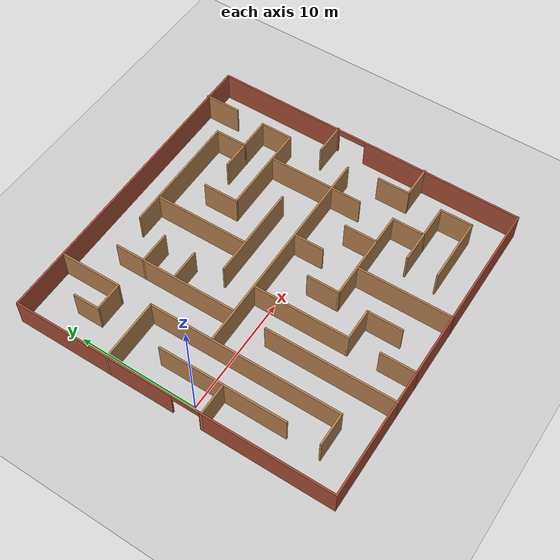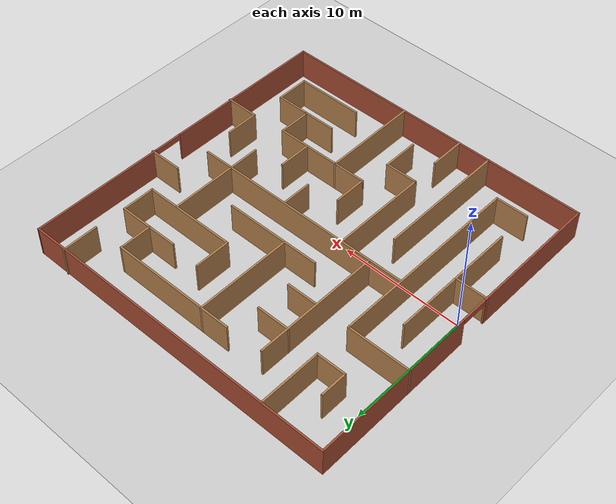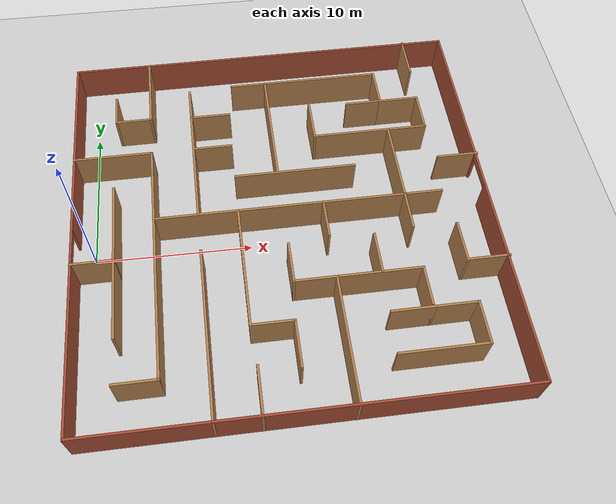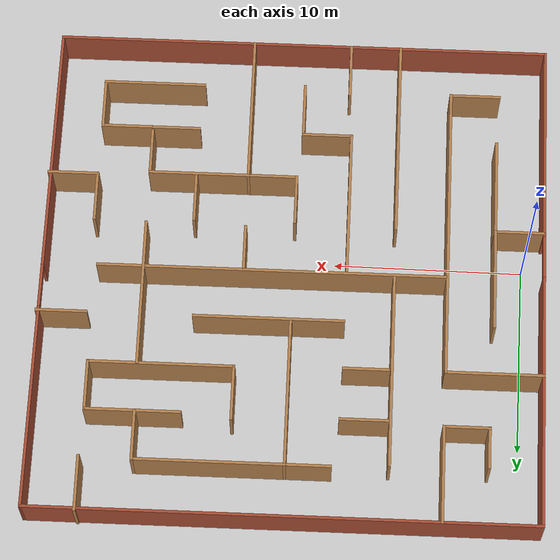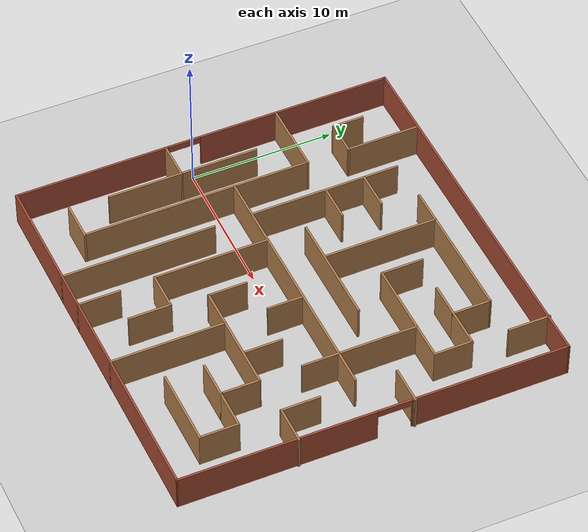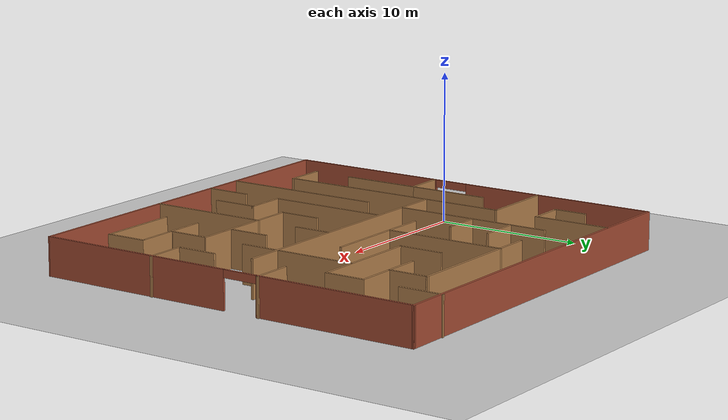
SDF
<sdf version="1.7">
 <world name="default">
  <light name="sun" type="directional">
   <pose>0 0 10 0 -0 0</pose>
   <diffuse>0.8 0.8 0.8 1</diffuse>
   <specular>0.2 0.2 0.2 1</specular>
   <attenuation>
    <range>1000</range>
    <constant>0.9</constant>
    <linear>0.01</linear>
    <quadratic>0.001</quadratic>
   </attenuation>
   <direction>-0.5 0.1 -0.9</direction>
   <spot><inner_angle>0</inner_angle><outer_angle>0</outer_angle><falloff>0</falloff></spot>
  </light>
  <model name="ground_plane">
   <static>1</static>
   <link name="link">
    <collision name="collision">
     <geometry><plane><normal>0 0 1</normal><size>100 100</size></plane></geometry>
     <surface>
      <contact><collide_bitmask>65535</collide_bitmask></contact>
      <friction><ode><mu>100</mu><mu2>50</mu2></ode></friction>
     </surface>
    </collision>
    <visual name="visual">
     <cast_shadows>0</cast_shadows>
     <geometry><plane><normal>0 0 1</normal><size>100 100</size></plane></geometry>
     <material>
      <script><uri>file://media/materials/scripts/gazebo.material</uri><name>Gazebo/Grey</name></script>
     </material>
    </visual>
   </link>
  </model>
  <gravity>0 0 -9.8</gravity>
  <magnetic_field>6e-06 2.3e-05 -4.2e-05</magnetic_field>
  <atmosphere type="adiabatic"/>
  <physics type="ode">
   <max_step_size>0.001</max_step_size>
   <real_time_factor>1</real_time_factor>
   <real_time_update_rate>1000</real_time_update_rate>
  </physics>
  <scene><ambient>0.4 0.4 0.4 1</ambient><background>0.7 0.7 0.7 1</background><shadows>1</shadows></scene>
  <audio><device>default</device></audio>
  <spherical_coordinates>
   <surface_model>EARTH_WGS84</surface_model>
   <latitude_deg>0</latitude_deg>
   <longitude_deg>0</longitude_deg>
   <elevation>0</elevation>
   <heading_deg>0</heading_deg>
  </spherical_coordinates>
  <model name="maze2">
   <pose>12.2143 1.45037 0 0 -0 -1.56188</pose>
   <link name="Wall_0">
    <collision name="Wall_0_Collision">
     <geometry><box><size>26.75 0.15 2.5</size></box></geometry>
     <pose>0 0 1.25 0 -0 0</pose>
    </collision>
    <visual name="Wall_0_Visual">
     <pose>0 0 1.25 0 -0 0</pose>
     <geometry><box><size>26.75 0.15 2.5</size></box></geometry>
     <material>
      <script><uri>file://media/materials/scripts/gazebo.material</uri><name>Gazebo/Bricks</name></script>
      <ambient>1 1 1 1</ambient>
     </material>
     <meta><layer>0</layer></meta>
    </visual>
    <pose>-13.2634 0.003745 0 0 -0 -1.5708</pose>
   </link>
   <link name="Wall_1">
    <pose>0.03659 -13.2963 0 0 -0 0</pose>
    <visual name="Wall_1_Visual_0">
     <pose>-6.5593 0 1.25 0 -0 0</pose>
     <geometry><box><size>13.6314 0.15 2.5</size></box></geometry>
     <material>
      <script><uri>file://media/materials/scripts/gazebo.material</uri><name>Gazebo/Bricks</name></script>
      <ambient>1 1 1 1</ambient>
     </material>
     <meta><layer>0</layer></meta>
    </visual>
    <collision name="Wall_1_Collision_0">
     <geometry><box><size>13.6314 0.15 2.5</size></box></geometry>
     <pose>-6.5593 0 1.25 0 -0 0</pose>
    </collision>
    <visual name="Wall_1_Visual_1">
     <pose>7.96356 0 1.25 0 -0 0</pose>
     <geometry><box><size>10.8229 0.15 2.5</size></box></geometry>
     <material>
      <script><uri>file://media/materials/scripts/gazebo.material</uri><name>Gazebo/Bricks</name></script>
      <ambient>1 1 1 1</ambient>
     </material>
     <meta><layer>0</layer></meta>
    </visual>
    <collision name="Wall_1_Collision_1">
     <geometry><box><size>10.8229 0.15 2.5</size></box></geometry>
     <pose>7.96356 0 1.25 0 -0 0</pose>
    </collision>
    <visual name="Wall_1_Visual_2">
     <pose>1.40426 0 2.25 0 -0 0</pose>
     <geometry><box><size>2.29572 0.15 0.5</size></box></geometry>
     <material>
      <script><uri>file://media/materials/scripts/gazebo.material</uri><name>Gazebo/Bricks</name></script>
      <ambient>1 1 1 1</ambient>
     </material>
     <meta><layer>0</layer></meta>
    </visual>
    <collision name="Wall_1_Collision_2">
     <geometry><box><size>2.29572 0.15 0.5</size></box></geometry>
     <pose>1.40426 0 2.25 0 -0 0</pose>
    </collision>
   </link>
   <link name="Wall_10">
    <collision name="Wall_10_Collision">
     <geometry><box><size>5.25 0.15 2.5</size></box></geometry>
     <pose>0 0 1.25 0 -0 0</pose>
    </collision>
    <visual name="Wall_10_Visual">
     <pose>0 0 1.25 0 -0 0</pose>
     <geometry><box><size>5.25 0.15 2.5</size></box></geometry>
     <material>
      <script><uri>file://media/materials/scripts/gazebo.material</uri><name>Gazebo/Wood</name></script>
      <ambient>1 1 1 1</ambient>
     </material>
     <meta><layer>0</layer></meta>
    </visual>
    <pose>5.3166 -10.7044 0 0 -0 0</pose>
   </link>
   <link name="Wall_12">
    <collision name="Wall_12_Collision">
     <geometry><box><size>5.5 0.15 2.5</size></box></geometry>
     <pose>0 0 1.25 0 -0 0</pose>
    </collision>
    <visual name="Wall_12_Visual">
     <pose>0 0 1.25 0 -0 0</pose>
     <geometry><box><size>5.5 0.15 2.5</size></box></geometry>
     <material>
      <script><uri>file://media/materials/scripts/gazebo.material</uri><name>Gazebo/Wood</name></script>
      <ambient>1 1 1 1</ambient>
     </material>
     <meta><layer>0</layer></meta>
    </visual>
    <pose>0.091601 -10.7044 0 0 -0 3.14159</pose>
   </link>
   <link name="Wall_14">
    <collision name="Wall_14_Collision">
     <geometry><box><size>5.25 0.15 2.5</size></box></geometry>
     <pose>0 0 1.25 0 -0 0</pose>
    </collision>
    <visual name="Wall_14_Visual">
     <pose>0 0 1.25 0 -0 0</pose>
     <geometry><box><size>5.25 0.15 2.5</size></box></geometry>
     <material>
      <script><uri>file://media/materials/scripts/gazebo.material</uri><name>Gazebo/Wood</name></script>
      <ambient>1 1 1 1</ambient>
     </material>
     <meta><layer>0</layer></meta>
    </visual>
    <pose>-5.20772 -10.7544 0 0 -0 1.5708</pose>
   </link>
   <link name="Wall_15">
    <collision name="Wall_15_Collision">
     <geometry><box><size>16 0.15 2.5</size></box></geometry>
     <pose>0 0 1.25 0 -0 0</pose>
    </collision>
    <visual name="Wall_15_Visual">
     <pose>0 0 1.25 0 -0 0</pose>
     <geometry><box><size>16 0.15 2.5</size></box></geometry>
     <material>
      <script><uri>file://media/materials/scripts/gazebo.material</uri><name>Gazebo/Wood</name></script>
      <ambient>1 1 1 1</ambient>
     </material>
     <meta><layer>0</layer></meta>
    </visual>
    <pose>2.71728 -8.20445 0 0 -0 0</pose>
   </link>
   <link name="Wall_16">
    <collision name="Wall_16_Collision">
     <geometry><box><size>2.75 0.15 2.5</size></box></geometry>
     <pose>0 0 1.25 0 -0 0</pose>
    </collision>
    <visual name="Wall_16_Visual">
     <pose>0 0 1.25 0 -0 0</pose>
     <geometry><box><size>2.75 0.15 2.5</size></box></geometry>
     <material>
      <script><uri>file://media/materials/scripts/gazebo.material</uri><name>Gazebo/Wood</name></script>
      <ambient>1 1 1 1</ambient>
     </material>
     <meta><layer>0</layer></meta>
    </visual>
    <pose>10.6423 -9.50445 0 0 -0 -1.5708</pose>
   </link>
   <link name="Wall_18">
    <collision name="Wall_18_Collision">
     <geometry><box><size>18.5 0.15 2.5</size></box></geometry>
     <pose>0 0 1.25 0 -0 0</pose>
    </collision>
    <visual name="Wall_18_Visual">
     <pose>0 0 1.25 0 -0 0</pose>
     <geometry><box><size>18.5 0.15 2.5</size></box></geometry>
     <material>
      <script><uri>file://media/materials/scripts/gazebo.material</uri><name>Gazebo/Wood</name></script>
      <ambient>1 1 1 1</ambient>
     </material>
     <meta><layer>0</layer></meta>
    </visual>
    <pose>0.081371 1.07827 0 0 -0 1.5708</pose>
   </link>
   <link name="Wall_2">
    <collision name="Wall_2_Collision">
     <geometry><box><size>26.5 0.15 2.5</size></box></geometry>
     <pose>0 0 1.25 0 -0 0</pose>
    </collision>
    <visual name="Wall_2_Visual">
     <pose>0 0 1.25 0 -0 0</pose>
     <geometry><box><size>26.5 0.15 2.5</size></box></geometry>
     <material>
      <script><uri>file://media/materials/scripts/gazebo.material</uri><name>Gazebo/Bricks</name></script>
      <ambient>1 1 1 1</ambient>
     </material>
     <meta><layer>0</layer></meta>
    </visual>
    <pose>13.3366 -0.121255 0 0 -0 1.5708</pose>
   </link>
   <link name="Wall_20">
    <collision name="Wall_20_Collision">
     <geometry><box><size>10.75 0.15 2.5</size></box></geometry>
     <pose>0 0 1.25 0 -0 0</pose>
    </collision>
    <visual name="Wall_20_Visual">
     <pose>0 0 1.25 0 -0 0</pose>
     <geometry><box><size>10.75 0.15 2.5</size></box></geometry>
     <material>
      <script><uri>file://media/materials/scripts/gazebo.material</uri><name>Gazebo/Wood</name></script>
      <ambient>1 1 1 1</ambient>
     </material>
     <meta><layer>0</layer></meta>
    </visual>
    <pose>8.04478 -5.4115 0 0 -0 3.14159</pose>
   </link>
   <link name="Wall_22">
    <collision name="Wall_22_Collision">
     <geometry><box><size>10.5 0.15 2.5</size></box></geometry>
     <pose>0 0 1.25 0 -0 0</pose>
    </collision>
    <visual name="Wall_22_Visual">
     <pose>0 0 1.25 0 -0 0</pose>
     <geometry><box><size>10.5 0.15 2.5</size></box></geometry>
     <material>
      <script><uri>file://media/materials/scripts/gazebo.material</uri><name>Gazebo/Wood</name></script>
      <ambient>1 1 1 1</ambient>
     </material>
     <meta><layer>0</layer></meta>
    </visual>
    <pose>-5.175 -5.4115 0 0 -0 3.14159</pose>
   </link>
   <link name="Wall_24">
    <collision name="Wall_24_Collision">
     <geometry><box><size>2.75 0.15 2.5</size></box></geometry>
     <pose>0 0 1.25 0 -0 0</pose>
    </collision>
    <visual name="Wall_24_Visual">
     <pose>0 0 1.25 0 -0 0</pose>
     <geometry><box><size>2.75 0.15 2.5</size></box></geometry>
     <material>
      <script><uri>file://media/materials/scripts/gazebo.material</uri><name>Gazebo/Wood</name></script>
      <ambient>1 1 1 1</ambient>
     </material>
     <meta><layer>0</layer></meta>
    </visual>
    <pose>-7.97432 -4.1115 0 0 -0 1.5708</pose>
   </link>
   <link name="Wall_26">
    <collision name="Wall_26_Collision">
     <geometry><box><size>2.5 0.15 2.5</size></box></geometry>
     <pose>0 0 1.25 0 -0 0</pose>
    </collision>
    <visual name="Wall_26_Visual">
     <pose>0 0 1.25 0 -0 0</pose>
     <geometry><box><size>2.5 0.15 2.5</size></box></geometry>
     <material>
      <script><uri>file://media/materials/scripts/gazebo.material</uri><name>Gazebo/Wood</name></script>
      <ambient>1 1 1 1</ambient>
     </material>
     <meta><layer>0</layer></meta>
    </visual>
    <pose>-5.20772 -4.07376 0 0 -0 1.5708</pose>
   </link>
   <link name="Wall_28">
    <collision name="Wall_28_Collision">
     <geometry><box><size>3 0.15 2.5</size></box></geometry>
     <pose>0 0 1.25 0 -0 0</pose>
    </collision>
    <visual name="Wall_28_Visual">
     <pose>0 0 1.25 0 -0 0</pose>
     <geometry><box><size>3 0.15 2.5</size></box></geometry>
     <material>
      <script><uri>file://media/materials/scripts/gazebo.material</uri><name>Gazebo/Wood</name></script>
      <ambient>1 1 1 1</ambient>
     </material>
     <meta><layer>0</layer></meta>
    </visual>
    <pose>11.9198 -2.72627 0 0 -0 3.14159</pose>
   </link>
   <link name="Wall_3">
    <pose>0.03659 13.1787 0 0 -0 3.13219</pose>
    <visual name="Wall_3_Visual_0">
     <pose>-6.63804 0 1.25 0 -0 0</pose>
     <geometry><box><size>13.4751 0.15 2.5</size></box></geometry>
     <material>
      <script><uri>file://media/materials/scripts/gazebo.material</uri><name>Gazebo/Bricks</name></script>
      <ambient>1 1 1 1</ambient>
     </material>
     <meta><layer>0</layer></meta>
    </visual>
    <collision name="Wall_3_Collision_0">
     <geometry><box><size>13.4751 0.15 2.5</size></box></geometry>
     <pose>-6.63804 0 1.25 0 -0 0</pose>
    </collision>
    <visual name="Wall_3_Visual_1">
     <pose>7.90929 0 1.25 0 -0 0</pose>
     <geometry><box><size>10.9326 0.15 2.5</size></box></geometry>
     <material>
      <script><uri>file://media/materials/scripts/gazebo.material</uri><name>Gazebo/Bricks</name></script>
      <ambient>1 1 1 1</ambient>
     </material>
     <meta><layer>0</layer></meta>
    </visual>
    <collision name="Wall_3_Collision_1">
     <geometry><box><size>10.9326 0.15 2.5</size></box></geometry>
     <pose>7.90929 0 1.25 0 -0 0</pose>
    </collision>
    <visual name="Wall_3_Visual_2">
     <pose>1.27126 0 2.25 0 -0 0</pose>
     <geometry><box><size>2.34349 0.15 0.5</size></box></geometry>
     <material>
      <script><uri>file://media/materials/scripts/gazebo.material</uri><name>Gazebo/Bricks</name></script>
      <ambient>1 1 1 1</ambient>
     </material>
     <meta><layer>0</layer></meta>
    </visual>
    <collision name="Wall_3_Collision_2">
     <geometry><box><size>2.34349 0.15 0.5</size></box></geometry>
     <pose>1.27126 0 2.25 0 -0 0</pose>
    </collision>
   </link>
   <link name="Wall_30">
    <collision name="Wall_30_Collision">
     <geometry><box><size>8 0.15 2.5</size></box></geometry>
     <pose>0 0 1.25 0 -0 0</pose>
    </collision>
    <visual name="Wall_30_Visual">
     <pose>0 0 1.25 0 -0 0</pose>
     <geometry><box><size>8 0.15 2.5</size></box></geometry>
     <material>
      <script><uri>file://media/materials/scripts/gazebo.material</uri><name>Gazebo/Wood</name></script>
      <ambient>1 1 1 1</ambient>
     </material>
     <meta><layer>0</layer></meta>
    </visual>
    <pose>4.08774 -2.88901 0 0 -0 0</pose>
   </link>
   <link name="Wall_31">
    <collision name="Wall_31_Collision">
     <geometry><box><size>2.75 0.15 2.5</size></box></geometry>
     <pose>0 0 1.25 0 -0 0</pose>
    </collision>
    <visual name="Wall_31_Visual">
     <pose>0 0 1.25 0 -0 0</pose>
     <geometry><box><size>2.75 0.15 2.5</size></box></geometry>
     <material>
      <script><uri>file://media/materials/scripts/gazebo.material</uri><name>Gazebo/Wood</name></script>
      <ambient>1 1 1 1</ambient>
     </material>
     <meta><layer>0</layer></meta>
    </visual>
    <pose>8.01274 -1.58901 0 0 -0 1.5708</pose>
   </link>
   <link name="Wall_32">
    <collision name="Wall_32_Collision">
     <geometry><box><size>3 0.15 2.5</size></box></geometry>
     <pose>0 0 1.25 0 -0 0</pose>
    </collision>
    <visual name="Wall_32_Visual">
     <pose>0 0 1.25 0 -0 0</pose>
     <geometry><box><size>3 0.15 2.5</size></box></geometry>
     <material>
      <script><uri>file://media/materials/scripts/gazebo.material</uri><name>Gazebo/Wood</name></script>
      <ambient>1 1 1 1</ambient>
     </material>
     <meta><layer>0</layer></meta>
    </visual>
    <pose>9.43774 -0.289008 0 0 -0 0</pose>
   </link>
   <link name="Wall_34">
    <collision name="Wall_34_Collision">
     <geometry><box><size>2.5 0.15 2.5</size></box></geometry>
     <pose>0 0 1.25 0 -0 0</pose>
    </collision>
    <visual name="Wall_34_Visual">
     <pose>0 0 1.25 0 -0 0</pose>
     <geometry><box><size>2.5 0.15 2.5</size></box></geometry>
     <material>
      <script><uri>file://media/materials/scripts/gazebo.material</uri><name>Gazebo/Wood</name></script>
      <ambient>1 1 1 1</ambient>
     </material>
     <meta><layer>0</layer></meta>
    </visual>
    <pose>1.33774 2.56282 0 0 -0 0</pose>
   </link>
   <link name="Wall_36">
    <collision name="Wall_36_Collision">
     <geometry><box><size>8 0.15 2.5</size></box></geometry>
     <pose>0 0 1.25 0 -0 0</pose>
    </collision>
    <visual name="Wall_36_Visual">
     <pose>0 0 1.25 0 -0 0</pose>
     <geometry><box><size>8 0.15 2.5</size></box></geometry>
     <material>
      <script><uri>file://media/materials/scripts/gazebo.material</uri><name>Gazebo/Wood</name></script>
      <ambient>1 1 1 1</ambient>
     </material>
     <meta><layer>0</layer></meta>
    </visual>
    <pose>9.41978 2.56282 0 0 -0 3.14159</pose>
   </link>
   <link name="Wall_37">
    <collision name="Wall_37_Collision">
     <geometry><box><size>2.75 0.15 2.5</size></box></geometry>
     <pose>0 0 1.25 0 -0 0</pose>
    </collision>
    <visual name="Wall_37_Visual">
     <pose>0 0 1.25 0 -0 0</pose>
     <geometry><box><size>2.75 0.15 2.5</size></box></geometry>
     <material>
      <script><uri>file://media/materials/scripts/gazebo.material</uri><name>Gazebo/Wood</name></script>
      <ambient>1 1 1 1</ambient>
     </material>
     <meta><layer>0</layer></meta>
    </visual>
    <pose>5.49478 1.26282 0 0 -0 -1.5708</pose>
   </link>
   <link name="Wall_38">
    <collision name="Wall_38_Collision">
     <geometry><box><size>2.75 0.15 2.5</size></box></geometry>
     <pose>0 0 1.25 0 -0 0</pose>
    </collision>
    <visual name="Wall_38_Visual">
     <pose>0 0 1.25 0 -0 0</pose>
     <geometry><box><size>2.75 0.15 2.5</size></box></geometry>
     <material>
      <script><uri>file://media/materials/scripts/gazebo.material</uri><name>Gazebo/Wood</name></script>
      <ambient>1 1 1 1</ambient>
     </material>
     <meta><layer>0</layer></meta>
    </visual>
    <pose>4.19478 -0.037176 0 0 -0 3.14159</pose>
   </link>
   <link name="Wall_40">
    <collision name="Wall_40_Collision">
     <geometry><box><size>5.41274 0.15 2.5</size></box></geometry>
     <pose>0 0 1.25 0 -0 0</pose>
    </collision>
    <visual name="Wall_40_Visual">
     <pose>0 0 1.25 0 -0 0</pose>
     <geometry><box><size>5.41274 0.15 2.5</size></box></geometry>
     <material>
      <script><uri>file://media/materials/scripts/gazebo.material</uri><name>Gazebo/Wood</name></script>
      <ambient>1 1 1 1</ambient>
     </material>
     <meta><layer>0</layer></meta>
    </visual>
    <pose>5.49478 5.19419 0 0 -0 1.5708</pose>
   </link>
   <link name="Wall_41">
    <collision name="Wall_41_Collision">
     <geometry><box><size>2.5 0.15 2.5</size></box></geometry>
     <pose>0 0 1.25 0 -0 0</pose>
    </collision>
    <visual name="Wall_41_Visual">
     <pose>0 0 1.25 0 -0 0</pose>
     <geometry><box><size>2.5 0.15 2.5</size></box></geometry>
     <material>
      <script><uri>file://media/materials/scripts/gazebo.material</uri><name>Gazebo/Wood</name></script>
      <ambient>1 1 1 1</ambient>
     </material>
     <meta><layer>0</layer></meta>
    </visual>
    <pose>6.75115 7.82557 0 0 -0 0</pose>
   </link>
   <link name="Wall_46">
    <collision name="Wall_46_Collision">
     <geometry><box><size>2.75 0.15 2.5</size></box></geometry>
     <pose>0 0 1.25 0 -0 0</pose>
    </collision>
    <visual name="Wall_46_Visual">
     <pose>0 0 1.25 0 -0 0</pose>
     <geometry><box><size>2.75 0.15 2.5</size></box></geometry>
     <material>
      <script><uri>file://media/materials/scripts/gazebo.material</uri><name>Gazebo/Wood</name></script>
      <ambient>1 1 1 1</ambient>
     </material>
     <meta><layer>0</layer></meta>
    </visual>
    <pose>8.13706 6.63328 0 0 -0 -1.5708</pose>
   </link>
   <link name="Wall_48">
    <collision name="Wall_48_Collision">
     <geometry><box><size>2.75 0.15 2.5</size></box></geometry>
     <pose>0 0 1.25 0 -0 0</pose>
    </collision>
    <visual name="Wall_48_Visual">
     <pose>0 0 1.25 0 -0 0</pose>
     <geometry><box><size>2.75 0.15 2.5</size></box></geometry>
     <material>
      <script><uri>file://media/materials/scripts/gazebo.material</uri><name>Gazebo/Wood</name></script>
      <ambient>1 1 1 1</ambient>
     </material>
     <meta><layer>0</layer></meta>
    </visual>
    <pose>8.13706 9.23328 0 0 -0 1.5708</pose>
   </link>
   <link name="Wall_49">
    <collision name="Wall_49_Collision">
     <geometry><box><size>2.75 0.15 2.5</size></box></geometry>
     <pose>0 0 1.25 0 -0 0</pose>
    </collision>
    <visual name="Wall_49_Visual">
     <pose>0 0 1.25 0 -0 0</pose>
     <geometry><box><size>2.75 0.15 2.5</size></box></geometry>
     <material>
      <script><uri>file://media/materials/scripts/gazebo.material</uri><name>Gazebo/Wood</name></script>
      <ambient>1 1 1 1</ambient>
     </material>
     <meta><layer>0</layer></meta>
    </visual>
    <pose>9.43706 10.5333 0 0 -0 0</pose>
   </link>
   <link name="Wall_5">
    <collision name="Wall_5_Collision">
     <geometry><box><size>5.25 0.15 2.5</size></box></geometry>
     <pose>0 0 1.25 0 -0 0</pose>
    </collision>
    <visual name="Wall_5_Visual">
     <pose>0 0 1.25 0 -0 0</pose>
     <geometry><box><size>5.25 0.15 2.5</size></box></geometry>
     <material>
      <script><uri>file://media/materials/scripts/gazebo.material</uri><name>Gazebo/Wood</name></script>
      <ambient>1 1 1 1</ambient>
     </material>
     <meta><layer>0</layer></meta>
    </visual>
    <pose>-10.7134 -8.1781 0 0 -0 0</pose>
   </link>
   <link name="Wall_50">
    <collision name="Wall_50_Collision">
     <geometry><box><size>5.5 0.15 2.5</size></box></geometry>
     <pose>0 0 1.25 0 -0 0</pose>
    </collision>
    <visual name="Wall_50_Visual">
     <pose>0 0 1.25 0 -0 0</pose>
     <geometry><box><size>5.5 0.15 2.5</size></box></geometry>
     <material>
      <script><uri>file://media/materials/scripts/gazebo.material</uri><name>Gazebo/Wood</name></script>
      <ambient>1 1 1 1</ambient>
     </material>
     <meta><layer>0</layer></meta>
    </visual>
    <pose>10.7371 7.85828 0 0 -0 -1.5708</pose>
   </link>
   <link name="Wall_52">
    <collision name="Wall_52_Collision">
     <geometry><box><size>2.75 0.15 2.5</size></box></geometry>
     <pose>0 0 1.25 0 -0 0</pose>
    </collision>
    <visual name="Wall_52_Visual">
     <pose>0 0 1.25 0 -0 0</pose>
     <geometry><box><size>2.75 0.15 2.5</size></box></geometry>
     <material>
      <script><uri>file://media/materials/scripts/gazebo.material</uri><name>Gazebo/Wood</name></script>
      <ambient>1 1 1 1</ambient>
     </material>
     <meta><layer>0</layer></meta>
    </visual>
    <pose>4.15183 5.32942 0 0 -0 3.14159</pose>
   </link>
   <link name="Wall_54">
    <collision name="Wall_54_Collision">
     <geometry><box><size>8 0.15 2.5</size></box></geometry>
     <pose>0 0 1.25 0 -0 0</pose>
    </collision>
    <visual name="Wall_54_Visual">
     <pose>0 0 1.25 0 -0 0</pose>
     <geometry><box><size>8 0.15 2.5</size></box></geometry>
     <material>
      <script><uri>file://media/materials/scripts/gazebo.material</uri><name>Gazebo/Wood</name></script>
      <ambient>1 1 1 1</ambient>
     </material>
     <meta><layer>0</layer></meta>
    </visual>
    <pose>-2.60386 1.11736 0 0 -0 1.5708</pose>
   </link>
   <link name="Wall_56">
    <collision name="Wall_56_Collision">
     <geometry><box><size>8 0.15 2.5</size></box></geometry>
     <pose>0 0 1.25 0 -0 0</pose>
    </collision>
    <visual name="Wall_56_Visual">
     <pose>0 0 1.25 0 -0 0</pose>
     <geometry><box><size>8 0.15 2.5</size></box></geometry>
     <material>
      <script><uri>file://media/materials/scripts/gazebo.material</uri><name>Gazebo/Wood</name></script>
      <ambient>1 1 1 1</ambient>
     </material>
     <meta><layer>0</layer></meta>
    </visual>
    <pose>-6.61023 -0.041036 0 0 -0 3.14159</pose>
   </link>
   <link name="Wall_57">
    <collision name="Wall_57_Collision">
     <geometry><box><size>2.5 0.15 2.5</size></box></geometry>
     <pose>0 0 1.25 0 -0 0</pose>
    </collision>
    <visual name="Wall_57_Visual">
     <pose>0 0 1.25 0 -0 0</pose>
     <geometry><box><size>2.5 0.15 2.5</size></box></geometry>
     <material>
      <script><uri>file://media/materials/scripts/gazebo.material</uri><name>Gazebo/Wood</name></script>
      <ambient>1 1 1 1</ambient>
     </material>
     <meta><layer>0</layer></meta>
    </visual>
    <pose>-10.5352 -1.21604 0 0 -0 -1.5708</pose>
   </link>
   <link name="Wall_59">
    <collision name="Wall_59_Collision">
     <geometry><box><size>8 0.15 2.5</size></box></geometry>
     <pose>0 0 1.25 0 -0 0</pose>
    </collision>
    <visual name="Wall_59_Visual">
     <pose>0 0 1.25 0 -0 0</pose>
     <geometry><box><size>8 0.15 2.5</size></box></geometry>
     <material>
      <script><uri>file://media/materials/scripts/gazebo.material</uri><name>Gazebo/Wood</name></script>
      <ambient>1 1 1 1</ambient>
     </material>
     <meta><layer>0</layer></meta>
    </visual>
    <pose>-10.5352 3.88396 0 0 -0 1.5708</pose>
   </link>
   <link name="Wall_6">
    <collision name="Wall_6_Collision">
     <geometry><box><size>2.5 0.15 2.5</size></box></geometry>
     <pose>0 0 1.25 0 -0 0</pose>
    </collision>
    <visual name="Wall_6_Visual">
     <pose>0 0 1.25 0 -0 0</pose>
     <geometry><box><size>2.5 0.15 2.5</size></box></geometry>
     <material>
      <script><uri>file://media/materials/scripts/gazebo.material</uri><name>Gazebo/Wood</name></script>
      <ambient>1 1 1 1</ambient>
     </material>
     <meta><layer>0</layer></meta>
    </visual>
    <pose>-8.16341 -9.3531 0 0 -0 -1.5708</pose>
   </link>
   <link name="Wall_60">
    <collision name="Wall_60_Collision">
     <geometry><box><size>2.75 0.15 2.5</size></box></geometry>
     <pose>0 0 1.25 0 -0 0</pose>
    </collision>
    <visual name="Wall_60_Visual">
     <pose>0 0 1.25 0 -0 0</pose>
     <geometry><box><size>2.75 0.15 2.5</size></box></geometry>
     <material>
      <script><uri>file://media/materials/scripts/gazebo.material</uri><name>Gazebo/Wood</name></script>
      <ambient>1 1 1 1</ambient>
     </material>
     <meta><layer>0</layer></meta>
    </visual>
    <pose>-9.23523 7.80896 0 0 -0 0</pose>
   </link>
   <link name="Wall_61">
    <collision name="Wall_61_Collision">
     <geometry><box><size>2.5 0.15 2.5</size></box></geometry>
     <pose>0 0 1.25 0 -0 0</pose>
    </collision>
    <visual name="Wall_61_Visual">
     <pose>0 0 1.25 0 -0 0</pose>
     <geometry><box><size>2.5 0.15 2.5</size></box></geometry>
     <material>
      <script><uri>file://media/materials/scripts/gazebo.material</uri><name>Gazebo/Wood</name></script>
      <ambient>1 1 1 1</ambient>
     </material>
     <meta><layer>0</layer></meta>
    </visual>
    <pose>-7.93523 6.63396 0 0 -0 -1.5708</pose>
   </link>
   <link name="Wall_63">
    <collision name="Wall_63_Collision">
     <geometry><box><size>2.75 0.15 2.5</size></box></geometry>
     <pose>0 0 1.25 0 -0 0</pose>
    </collision>
    <visual name="Wall_63_Visual">
     <pose>0 0 1.25 0 -0 0</pose>
     <geometry><box><size>2.75 0.15 2.5</size></box></geometry>
     <material>
      <script><uri>file://media/materials/scripts/gazebo.material</uri><name>Gazebo/Wood</name></script>
      <ambient>1 1 1 1</ambient>
     </material>
     <meta><layer>0</layer></meta>
    </visual>
    <pose>-7.93523 9.10896 0 0 -0 1.5708</pose>
   </link>
   <link name="Wall_64">
    <collision name="Wall_64_Collision">
     <geometry><box><size>2.75 0.15 2.5</size></box></geometry>
     <pose>0 0 1.25 0 -0 0</pose>
    </collision>
    <visual name="Wall_64_Visual">
     <pose>0 0 1.25 0 -0 0</pose>
     <geometry><box><size>2.75 0.15 2.5</size></box></geometry>
     <material>
      <script><uri>file://media/materials/scripts/gazebo.material</uri><name>Gazebo/Wood</name></script>
      <ambient>1 1 1 1</ambient>
     </material>
     <meta><layer>0</layer></meta>
    </visual>
    <pose>-6.63523 10.409 0 0 -0 0</pose>
   </link>
   <link name="Wall_65">
    <collision name="Wall_65_Collision">
     <geometry><box><size>7.75 0.15 2.5</size></box></geometry>
     <pose>0 0 1.25 0 -0 0</pose>
    </collision>
    <visual name="Wall_65_Visual">
     <pose>0 0 1.25 0 -0 0</pose>
     <geometry><box><size>7.75 0.15 2.5</size></box></geometry>
     <material>
      <script><uri>file://media/materials/scripts/gazebo.material</uri><name>Gazebo/Wood</name></script>
      <ambient>1 1 1 1</ambient>
     </material>
     <meta><layer>0</layer></meta>
    </visual>
    <pose>-5.33523 6.60896 0 0 -0 -1.5708</pose>
   </link>
   <link name="Wall_66">
    <collision name="Wall_66_Collision">
     <geometry><box><size>3 0.15 2.5</size></box></geometry>
     <pose>0 0 1.25 0 -0 0</pose>
    </collision>
    <visual name="Wall_66_Visual">
     <pose>0 0 1.25 0 -0 0</pose>
     <geometry><box><size>3 0.15 2.5</size></box></geometry>
     <material>
      <script><uri>file://media/materials/scripts/gazebo.material</uri><name>Gazebo/Wood</name></script>
      <ambient>1 1 1 1</ambient>
     </material>
     <meta><layer>0</layer></meta>
    </visual>
    <pose>-6.76023 2.80896 0 0 -0 3.14159</pose>
   </link>
   <link name="Wall_7">
    <collision name="Wall_7_Collision">
     <geometry><box><size>2.25 0.15 2.5</size></box></geometry>
     <pose>0 0 1.25 0 -0 0</pose>
    </collision>
    <visual name="Wall_7_Visual">
     <pose>0 0 1.25 0 -0 0</pose>
     <geometry><box><size>2.25 0.15 2.5</size></box></geometry>
     <material>
      <script><uri>file://media/materials/scripts/gazebo.material</uri><name>Gazebo/Wood</name></script>
      <ambient>1 1 1 1</ambient>
     </material>
     <meta><layer>0</layer></meta>
    </visual>
    <pose>-9.21341 -10.5281 0 0 -0 3.14159</pose>
   </link>
   <link name="Wall_71">
    <collision name="Wall_71_Collision">
     <geometry><box><size>8 0.15 2.5</size></box></geometry>
     <pose>0 0 1.25 0 -0 0</pose>
    </collision>
    <visual name="Wall_71_Visual">
     <pose>0 0 1.25 0 -0 0</pose>
     <geometry><box><size>8 0.15 2.5</size></box></geometry>
     <material>
      <script><uri>file://media/materials/scripts/gazebo.material</uri><name>Gazebo/Wood</name></script>
      <ambient>1 1 1 1</ambient>
     </material>
     <meta><layer>0</layer></meta>
    </visual>
    <pose>-1.36409 7.85191 0 0 -0 0</pose>
   </link>
   <link name="Wall_73">
    <collision name="Wall_73_Collision">
     <geometry><box><size>2.75 0.15 2.5</size></box></geometry>
     <pose>0 0 1.25 0 -0 0</pose>
    </collision>
    <visual name="Wall_73_Visual">
     <pose>0 0 1.25 0 -0 0</pose>
     <geometry><box><size>2.75 0.15 2.5</size></box></geometry>
     <material>
      <script><uri>file://media/materials/scripts/gazebo.material</uri><name>Gazebo/Wood</name></script>
      <ambient>1 1 1 1</ambient>
     </material>
     <meta><layer>0</layer></meta>
    </visual>
    <pose>5.28909 11.9224 0 0 -0 -1.5708</pose>
   </link>
   <link name="Wall_74">
    <collision name="Wall_74_Collision">
     <geometry><box><size>2.75 0.15 2.5</size></box></geometry>
     <pose>0 0 1.25 0 -0 0</pose>
    </collision>
    <visual name="Wall_74_Visual">
     <pose>0 0 1.25 0 -0 0</pose>
     <geometry><box><size>2.75 0.15 2.5</size></box></geometry>
     <material>
      <script><uri>file://media/materials/scripts/gazebo.material</uri><name>Gazebo/Wood</name></script>
      <ambient>1 1 1 1</ambient>
     </material>
     <meta><layer>0</layer></meta>
    </visual>
    <pose>3.98909 10.6224 0 0 -0 3.14159</pose>
   </link>
   <link name="Wall_76">
    <collision name="Wall_76_Collision">
     <geometry><box><size>3 0.15 2.5</size></box></geometry>
     <pose>0 0 1.25 0 -0 0</pose>
    </collision>
    <visual name="Wall_76_Visual">
     <pose>0 0 1.25 0 -0 0</pose>
     <geometry><box><size>3 0.15 2.5</size></box></geometry>
     <material>
      <script><uri>file://media/materials/scripts/gazebo.material</uri><name>Gazebo/Wood</name></script>
      <ambient>1 1 1 1</ambient>
     </material>
     <meta><layer>0</layer></meta>
    </visual>
    <pose>-11.9198 10.5371 0 0 -0 0</pose>
   </link>
   <link name="Wall_78">
    <collision name="Wall_78_Collision">
     <geometry><box><size>2.75 0.15 2.5</size></box></geometry>
     <pose>0 0 1.25 0 -0 0</pose>
    </collision>
    <visual name="Wall_78_Visual">
     <pose>0 0 1.25 0 -0 0</pose>
     <geometry><box><size>2.75 0.15 2.5</size></box></geometry>
     <material>
      <script><uri>file://media/materials/scripts/gazebo.material</uri><name>Gazebo/Wood</name></script>
      <ambient>1 1 1 1</ambient>
     </material>
     <meta><layer>0</layer></meta>
    </visual>
    <pose>-2.60386 12.0037 0 0 -0 -1.5708</pose>
   </link>
   <link name="Wall_9">
    <collision name="Wall_9_Collision">
     <geometry><box><size>2.75 0.15 2.5</size></box></geometry>
     <pose>0 0 1.25 0 -0 0</pose>
    </collision>
    <visual name="Wall_9_Visual">
     <pose>0 0 1.25 0 -0 0</pose>
     <geometry><box><size>2.75 0.15 2.5</size></box></geometry>
     <material>
      <script><uri>file://media/materials/scripts/gazebo.material</uri><name>Gazebo/Wood</name></script>
      <ambient>1 1 1 1</ambient>
     </material>
     <meta><layer>0</layer></meta>
    </visual>
    <pose>2.7666 -12.0044 0 0 -0 1.5708</pose>
   </link>
   <static>1</static>
  </model>
 </world>
</sdf>
